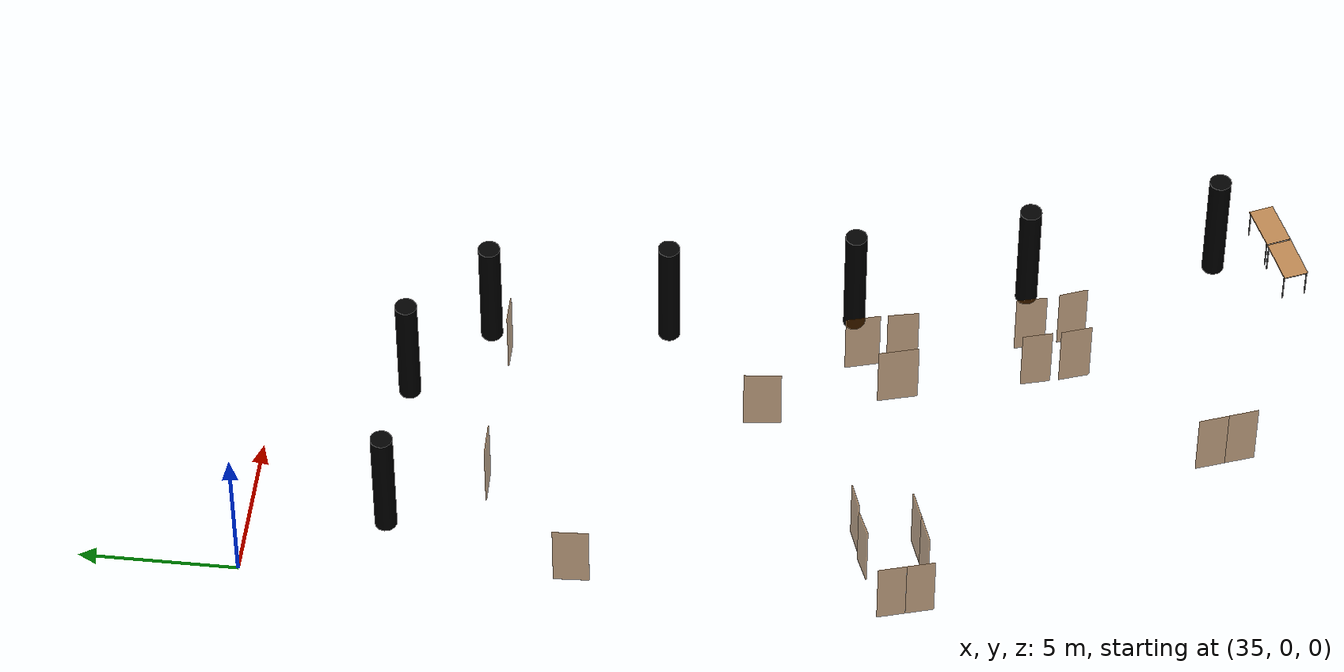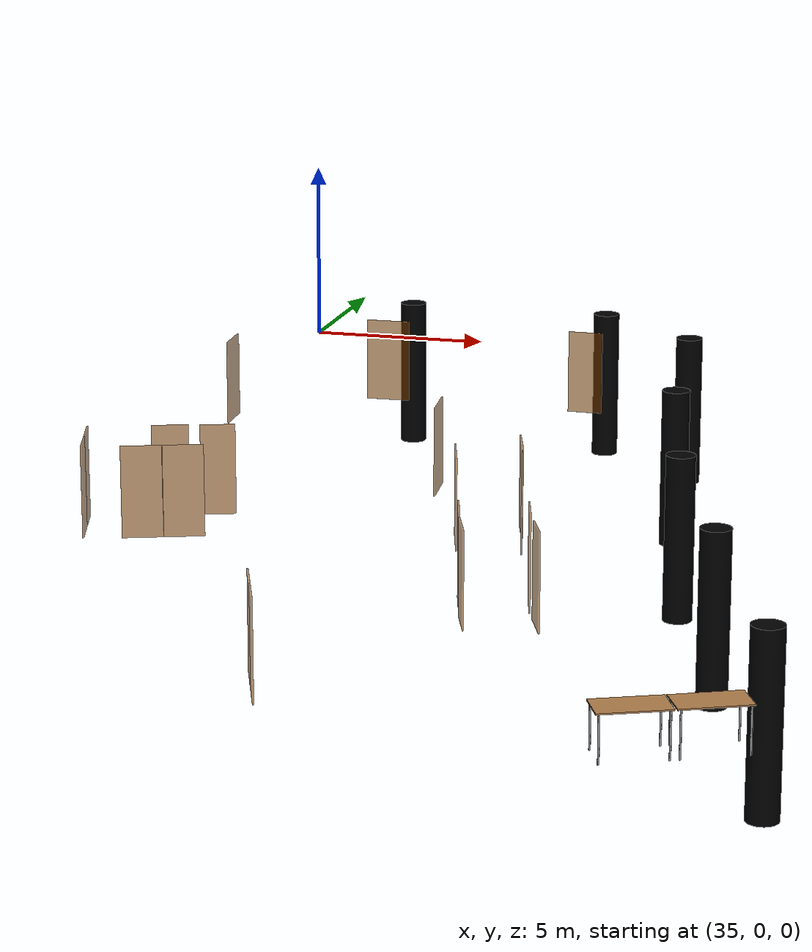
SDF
<sdf version="1.7">
 <world name="world">
  <model name="OpenRobotics/Table_4">
   <static>1</static>
   <link name="link">
    <collision name="surface">
     <pose>0 0 1 0 -0 0</pose>
     <geometry><box><size>1.5 0.8 0.03</size></box></geometry>
     <surface><friction><ode><mu>0.6</mu><mu2>0.6</mu2></ode></friction></surface>
    </collision>
    <visual name="visual1">
     <pose>0 0 1 0 -0 0</pose>
     <geometry><box><size>1.5 0.8 0.03</size></box></geometry>
     <material>
      <script><uri>file://media/materials/scripts/gazebo.material</uri><name>Gazebo/Wood</name></script>
     </material>
    </visual>
    <collision name="front_left_leg_c">
     <pose>0.68 0.38 0.5 0 -0 0</pose>
     <geometry><cylinder><radius>0.02</radius><length>1</length></cylinder></geometry>
    </collision>
    <visual name="front_left_leg">
     <pose>0.68 0.38 0.5 0 -0 0</pose>
     <geometry><cylinder><radius>0.02</radius><length>1</length></cylinder></geometry>
     <material>
      <script><uri>file://media/materials/scripts/gazebo.material</uri><name>Gazebo/Grey</name></script>
     </material>
    </visual>
    <collision name="front_right_leg_c">
     <pose>0.68 -0.38 0.5 0 -0 0</pose>
     <geometry><cylinder><radius>0.02</radius><length>1</length></cylinder></geometry>
    </collision>
    <visual name="front_right_leg">
     <pose>0.68 -0.38 0.5 0 -0 0</pose>
     <geometry><cylinder><radius>0.02</radius><length>1</length></cylinder></geometry>
     <material>
      <script><uri>file://media/materials/scripts/gazebo.material</uri><name>Gazebo/Grey</name></script>
     </material>
    </visual>
    <collision name="back_right_leg_c">
     <pose>-0.68 -0.38 0.5 0 -0 0</pose>
     <geometry><cylinder><radius>0.02</radius><length>1</length></cylinder></geometry>
    </collision>
    <visual name="back_right_leg">
     <pose>-0.68 -0.38 0.5 0 -0 0</pose>
     <geometry><cylinder><radius>0.02</radius><length>1</length></cylinder></geometry>
     <material>
      <script><uri>file://media/materials/scripts/gazebo.material</uri><name>Gazebo/Grey</name></script>
     </material>
    </visual>
    <collision name="back_left_leg_c">
     <pose>-0.68 0.38 0.5 0 -0 0</pose>
     <geometry><cylinder><radius>0.02</radius><length>1</length></cylinder></geometry>
    </collision>
    <visual name="back_left_leg">
     <pose>-0.68 0.38 0.5 0 -0 0</pose>
     <geometry><cylinder><radius>0.02</radius><length>1</length></cylinder></geometry>
     <material>
      <script><uri>file://media/materials/scripts/gazebo.material</uri><name>Gazebo/Grey</name></script>
     </material>
    </visual>
   </link>
   <pose>50.5168 -31.5278 0 0 -0 0.4167</pose>
  </model>
  <model name="OpenRobotics/Table_5">
   <static>1</static>
   <link name="link">
    <collision name="surface">
     <pose>0 0 1 0 -0 0</pose>
     <geometry><box><size>1.5 0.8 0.03</size></box></geometry>
     <surface><friction><ode><mu>0.6</mu><mu2>0.6</mu2></ode></friction></surface>
    </collision>
    <visual name="visual1">
     <pose>0 0 1 0 -0 0</pose>
     <geometry><box><size>1.5 0.8 0.03</size></box></geometry>
     <material>
      <script><uri>file://media/materials/scripts/gazebo.material</uri><name>Gazebo/Wood</name></script>
     </material>
    </visual>
    <collision name="front_left_leg_c">
     <pose>0.68 0.38 0.5 0 -0 0</pose>
     <geometry><cylinder><radius>0.02</radius><length>1</length></cylinder></geometry>
    </collision>
    <visual name="front_left_leg">
     <pose>0.68 0.38 0.5 0 -0 0</pose>
     <geometry><cylinder><radius>0.02</radius><length>1</length></cylinder></geometry>
     <material>
      <script><uri>file://media/materials/scripts/gazebo.material</uri><name>Gazebo/Grey</name></script>
     </material>
    </visual>
    <collision name="front_right_leg_c">
     <pose>0.68 -0.38 0.5 0 -0 0</pose>
     <geometry><cylinder><radius>0.02</radius><length>1</length></cylinder></geometry>
    </collision>
    <visual name="front_right_leg">
     <pose>0.68 -0.38 0.5 0 -0 0</pose>
     <geometry><cylinder><radius>0.02</radius><length>1</length></cylinder></geometry>
     <material>
      <script><uri>file://media/materials/scripts/gazebo.material</uri><name>Gazebo/Grey</name></script>
     </material>
    </visual>
    <collision name="back_right_leg_c">
     <pose>-0.68 -0.38 0.5 0 -0 0</pose>
     <geometry><cylinder><radius>0.02</radius><length>1</length></cylinder></geometry>
    </collision>
    <visual name="back_right_leg">
     <pose>-0.68 -0.38 0.5 0 -0 0</pose>
     <geometry><cylinder><radius>0.02</radius><length>1</length></cylinder></geometry>
     <material>
      <script><uri>file://media/materials/scripts/gazebo.material</uri><name>Gazebo/Grey</name></script>
     </material>
    </visual>
    <collision name="back_left_leg_c">
     <pose>-0.68 0.38 0.5 0 -0 0</pose>
     <geometry><cylinder><radius>0.02</radius><length>1</length></cylinder></geometry>
    </collision>
    <visual name="back_left_leg">
     <pose>-0.68 0.38 0.5 0 -0 0</pose>
     <geometry><cylinder><radius>0.02</radius><length>1</length></cylinder></geometry>
     <material>
      <script><uri>file://media/materials/scripts/gazebo.material</uri><name>Gazebo/Grey</name></script>
     </material>
    </visual>
   </link>
   <pose>51.9247 -30.8942 0 0 -0 0.4347</pose>
  </model>
  <model name="D12">
   <pose>47.2222 -24.83 0 0 -0 -1.20677</pose>
   <link name="right">
    <pose>0 0 1.11 0 -0 0</pose>
    <visual name="right_visual">
     <geometry><box><size>0.929981 0.03 2.2</size></box></geometry>
     <material><ambient>0.5 0.25 0 0.6</ambient><diffuse>0.5 0.25 0 0.6</diffuse></material>
    </visual>
    <collision name="right_collision">
     <geometry><box><size>0.929981 0.03 2.2</size></box></geometry>
     <surface><contact><collide_bitmask>2</collide_bitmask></contact></surface>
    </collision>
    <inertial>
     <mass>50</mass>
     <inertia><ixx>20.1704</ixx><iyy>23.7703</iyy><izz>3.60736</izz><ixy>0</ixy><ixz>0</ixz><iyz>0</iyz></inertia>
    </inertial>
   </link>
   <joint name="right_joint" type="revolute">
    <parent>world</parent>
    <child>right</child>
    <axis>
     <xyz>0 0 1</xyz>
     <limit><lower>0</lower><upper>1.57</upper></limit>
     <dynamics><spring_reference>0</spring_reference><spring_stiffness>0</spring_stiffness></dynamics>
    </axis>
    <pose>0.469991 0 0 0 -0 0</pose>
   </joint>
   <plugin name="door_D12" filename="libdoor.so">
    <v_max_door>0.5</v_max_door>
    <a_max_door>0.3</a_max_door>
    <a_nom_door>0.15</a_nom_door>
    <dx_min_door>0.01</dx_min_door>
    <f_max_door>500.0</f_max_door>
    <door name="D12" type="SwingDoor" left_joint_name="empty_joint" right_joint_name="right_joint"/>
   </plugin>
  </model>
  <model name="D13">
   <pose>46.7861 -23.541 -0 0 0 -1.31886</pose>
   <link name="right">
    <pose>0 0 1.11 0 -0 0</pose>
    <visual name="right_visual">
     <geometry><box><size>0.981892 0.03 2.2</size></box></geometry>
     <material><ambient>0.5 0.25 0 0.6</ambient><diffuse>0.5 0.25 0 0.6</diffuse></material>
    </visual>
    <collision name="right_collision">
     <geometry><box><size>0.981892 0.03 2.2</size></box></geometry>
     <surface><contact><collide_bitmask>2</collide_bitmask></contact></surface>
    </collision>
    <inertial>
     <mass>50</mass>
     <inertia><ixx>20.1704</ixx><iyy>24.1838</iyy><izz>4.02088</izz><ixy>0</ixy><ixz>0</ixz><iyz>0</iyz></inertia>
    </inertial>
   </link>
   <joint name="right_joint" type="revolute">
    <parent>world</parent>
    <child>right</child>
    <axis>
     <xyz>0 0 -1</xyz>
     <limit><lower>0</lower><upper>1.57</upper></limit>
     <dynamics><spring_reference>0</spring_reference><spring_stiffness>0</spring_stiffness></dynamics>
    </axis>
    <pose>0.495946 0 0 0 -0 0</pose>
   </joint>
   <plugin name="door_D13" filename="libdoor.so">
    <v_max_door>0.5</v_max_door>
    <a_max_door>0.3</a_max_door>
    <a_nom_door>0.15</a_nom_door>
    <dx_min_door>0.01</dx_min_door>
    <f_max_door>500.0</f_max_door>
    <door name="D13" type="SwingDoor" left_joint_name="empty_joint" right_joint_name="right_joint"/>
   </plugin>
  </model>
  <model name="D14">
   <pose>45.7058 -19.5679 0 0 0 -1.3544</pose>
   <link name="right">
    <pose>0 0 1.11 0 -0 0</pose>
    <visual name="right_visual">
     <geometry><box><size>0.986867 0.03 2.2</size></box></geometry>
     <material><ambient>0.5 0.25 0 0.6</ambient><diffuse>0.5 0.25 0 0.6</diffuse></material>
    </visual>
    <collision name="right_collision">
     <geometry><box><size>0.986867 0.03 2.2</size></box></geometry>
     <surface><contact><collide_bitmask>2</collide_bitmask></contact></surface>
    </collision>
    <inertial>
     <mass>50</mass>
     <inertia><ixx>20.1704</ixx><iyy>24.2246</iyy><izz>4.0617</izz><ixy>0</ixy><ixz>0</ixz><iyz>0</iyz></inertia>
    </inertial>
   </link>
   <joint name="right_joint" type="revolute">
    <parent>world</parent>
    <child>right</child>
    <axis>
     <xyz>0 0 1</xyz>
     <limit><lower>0</lower><upper>1.57</upper></limit>
     <dynamics><spring_reference>0</spring_reference><spring_stiffness>0</spring_stiffness></dynamics>
    </axis>
    <pose>0.498434 0 0 0 -0 0</pose>
   </joint>
   <plugin name="door_D14" filename="libdoor.so">
    <v_max_door>0.5</v_max_door>
    <a_max_door>0.3</a_max_door>
    <a_nom_door>0.15</a_nom_door>
    <dx_min_door>0.01</dx_min_door>
    <f_max_door>500.0</f_max_door>
    <door name="D14" type="SwingDoor" left_joint_name="empty_joint" right_joint_name="right_joint"/>
   </plugin>
  </model>
  <model name="D15">
   <pose>45.4079 -18.3231 0 0 -0 -1.29664</pose>
   <link name="right">
    <pose>0 0 1.11 0 -0 0</pose>
    <visual name="right_visual">
     <geometry><box><size>1.10514 0.03 2.2</size></box></geometry>
     <material><ambient>0.5 0.25 0 0.6</ambient><diffuse>0.5 0.25 0 0.6</diffuse></material>
    </visual>
    <collision name="right_collision">
     <geometry><box><size>1.10514 0.03 2.2</size></box></geometry>
     <surface><contact><collide_bitmask>2</collide_bitmask></contact></surface>
    </collision>
    <inertial>
     <mass>50</mass>
     <inertia><ixx>20.1704</ixx><iyy>25.2556</iyy><izz>5.09265</izz><ixy>0</ixy><ixz>0</ixz><iyz>0</iyz></inertia>
    </inertial>
   </link>
   <joint name="right_joint" type="revolute">
    <parent>world</parent>
    <child>right</child>
    <axis>
     <xyz>0 0 -1</xyz>
     <limit><lower>0</lower><upper>1.57</upper></limit>
     <dynamics><spring_reference>0</spring_reference><spring_stiffness>0</spring_stiffness></dynamics>
    </axis>
    <pose>0.55757 0 0 0 -0 0</pose>
   </joint>
   <plugin name="door_D15" filename="libdoor.so">
    <v_max_door>0.5</v_max_door>
    <a_max_door>0.3</a_max_door>
    <a_nom_door>0.15</a_nom_door>
    <dx_min_door>0.01</dx_min_door>
    <f_max_door>500.0</f_max_door>
    <door name="D15" type="SwingDoor" left_joint_name="empty_joint" right_joint_name="right_joint"/>
   </plugin>
  </model>
  <model name="D16">
   <pose>42.6679 -15.4188 0 -0 -0 -1.47952</pose>
   <link name="right">
    <pose>0 0 1.11 0 -0 0</pose>
    <visual name="right_visual">
     <geometry><box><size>1.1816 0.03 2.2</size></box></geometry>
     <material><ambient>0.5 0.25 0 0.6</ambient><diffuse>0.5 0.25 0 0.6</diffuse></material>
    </visual>
    <collision name="right_collision">
     <geometry><box><size>1.1816 0.03 2.2</size></box></geometry>
     <surface><contact><collide_bitmask>2</collide_bitmask></contact></surface>
    </collision>
    <inertial>
     <mass>50</mass>
     <inertia><ixx>20.1704</ixx><iyy>25.9841</iyy><izz>5.82114</izz><ixy>0</ixy><ixz>0</ixz><iyz>0</iyz></inertia>
    </inertial>
   </link>
   <joint name="right_joint" type="revolute">
    <parent>world</parent>
    <child>right</child>
    <axis>
     <xyz>0 0 1</xyz>
     <limit><lower>0</lower><upper>1.57</upper></limit>
     <dynamics><spring_reference>0</spring_reference><spring_stiffness>0</spring_stiffness></dynamics>
    </axis>
    <pose>0.595799 0 0 0 -0 0</pose>
   </joint>
   <plugin name="door_D16" filename="libdoor.so">
    <v_max_door>0.5</v_max_door>
    <a_max_door>0.3</a_max_door>
    <a_nom_door>0.15</a_nom_door>
    <dx_min_door>0.01</dx_min_door>
    <f_max_door>500.0</f_max_door>
    <door name="D16" type="SwingDoor" left_joint_name="empty_joint" right_joint_name="right_joint"/>
   </plugin>
  </model>
  <model name="D17">
   <pose>44.1506 -19.5573 -0 0 -0 1.84229</pose>
   <link name="right">
    <pose>0 0 1.11 0 -0 0</pose>
    <visual name="right_visual">
     <geometry><box><size>1.28448 0.03 2.2</size></box></geometry>
     <material><ambient>0.5 0.25 0 0.6</ambient><diffuse>0.5 0.25 0 0.6</diffuse></material>
    </visual>
    <collision name="right_collision">
     <geometry><box><size>1.28448 0.03 2.2</size></box></geometry>
     <surface><contact><collide_bitmask>2</collide_bitmask></contact></surface>
    </collision>
    <inertial>
     <mass>50</mass>
     <inertia><ixx>20.1704</ixx><iyy>27.0412</iyy><izz>6.87827</izz><ixy>0</ixy><ixz>0</ixz><iyz>0</iyz></inertia>
    </inertial>
   </link>
   <joint name="right_joint" type="revolute">
    <parent>world</parent>
    <child>right</child>
    <axis>
     <xyz>0 0 -1</xyz>
     <limit><lower>0</lower><upper>1.57</upper></limit>
     <dynamics><spring_reference>0</spring_reference><spring_stiffness>0</spring_stiffness></dynamics>
    </axis>
    <pose>0.647239 0 0 0 -0 0</pose>
   </joint>
   <plugin name="door_D17" filename="libdoor.so">
    <v_max_door>0.5</v_max_door>
    <a_max_door>0.3</a_max_door>
    <a_nom_door>0.15</a_nom_door>
    <dx_min_door>0.01</dx_min_door>
    <f_max_door>500.0</f_max_door>
    <door name="D17" type="SwingDoor" left_joint_name="empty_joint" right_joint_name="right_joint"/>
   </plugin>
  </model>
  <model name="D18">
   <pose>45.2939 -23.8308 0 0 -0 1.84233</pose>
   <link name="right">
    <pose>0 0 1.11 0 -0 0</pose>
    <visual name="right_visual">
     <geometry><box><size>0.954162 0.03 2.2</size></box></geometry>
     <material><ambient>0.5 0.25 0 0.6</ambient><diffuse>0.5 0.25 0 0.6</diffuse></material>
    </visual>
    <collision name="right_collision">
     <geometry><box><size>0.954162 0.03 2.2</size></box></geometry>
     <surface><contact><collide_bitmask>2</collide_bitmask></contact></surface>
    </collision>
    <inertial>
     <mass>50</mass>
     <inertia><ixx>20.1704</ixx><iyy>23.9601</iyy><izz>3.79719</izz><ixy>0</ixy><ixz>0</ixz><iyz>0</iyz></inertia>
    </inertial>
   </link>
   <joint name="right_joint" type="revolute">
    <parent>world</parent>
    <child>right</child>
    <axis>
     <xyz>0 0 1</xyz>
     <limit><lower>0</lower><upper>1.57</upper></limit>
     <dynamics><spring_reference>0</spring_reference><spring_stiffness>0</spring_stiffness></dynamics>
    </axis>
    <pose>0.482081 0 0 0 -0 0</pose>
   </joint>
   <plugin name="door_D18" filename="libdoor.so">
    <v_max_door>0.5</v_max_door>
    <a_max_door>0.3</a_max_door>
    <a_nom_door>0.15</a_nom_door>
    <dx_min_door>0.01</dx_min_door>
    <f_max_door>500.0</f_max_door>
    <door name="D18" type="SwingDoor" left_joint_name="empty_joint" right_joint_name="right_joint"/>
   </plugin>
  </model>
  <model name="D19">
   <pose>45.6474 -25.0325 0 0 -0 1.90388</pose>
   <link name="right">
    <pose>0 0 1.11 0 -0 0</pose>
    <visual name="right_visual">
     <geometry><box><size>0.992411 0.03 2.2</size></box></geometry>
     <material><ambient>0.5 0.25 0 0.6</ambient><diffuse>0.5 0.25 0 0.6</diffuse></material>
    </visual>
    <collision name="right_collision">
     <geometry><box><size>0.992411 0.03 2.2</size></box></geometry>
     <surface><contact><collide_bitmask>2</collide_bitmask></contact></surface>
    </collision>
    <inertial>
     <mass>50</mass>
     <inertia><ixx>20.1704</ixx><iyy>24.2703</iyy><izz>4.10741</izz><ixy>0</ixy><ixz>0</ixz><iyz>0</iyz></inertia>
    </inertial>
   </link>
   <joint name="right_joint" type="revolute">
    <parent>world</parent>
    <child>right</child>
    <axis>
     <xyz>0 0 -1</xyz>
     <limit><lower>0</lower><upper>1.57</upper></limit>
     <dynamics><spring_reference>0</spring_reference><spring_stiffness>0</spring_stiffness></dynamics>
    </axis>
    <pose>0.501205 0 0 0 -0 0</pose>
   </joint>
   <plugin name="door_D19" filename="libdoor.so">
    <v_max_door>0.5</v_max_door>
    <a_max_door>0.3</a_max_door>
    <a_nom_door>0.15</a_nom_door>
    <dx_min_door>0.01</dx_min_door>
    <f_max_door>500.0</f_max_door>
    <door name="D19" type="SwingDoor" left_joint_name="empty_joint" right_joint_name="right_joint"/>
   </plugin>
  </model>
  <model name="D28">
   <pose>35.6845 -10.236 0 0 -0 1.62689</pose>
   <link name="right">
    <pose>0 0 1.11 0 -0 0</pose>
    <visual name="right_visual">
     <geometry><box><size>1.11833 0.03 2.2</size></box></geometry>
     <material><ambient>0.5 0.25 0 0.6</ambient><diffuse>0.5 0.25 0 0.6</diffuse></material>
    </visual>
    <collision name="right_collision">
     <geometry><box><size>1.11833 0.03 2.2</size></box></geometry>
     <surface><contact><collide_bitmask>2</collide_bitmask></contact></surface>
    </collision>
    <inertial>
     <mass>50</mass>
     <inertia><ixx>20.1704</ixx><iyy>25.3777</iyy><izz>5.21482</izz><ixy>0</ixy><ixz>0</ixz><iyz>0</iyz></inertia>
    </inertial>
   </link>
   <joint name="right_joint" type="revolute">
    <parent>world</parent>
    <child>right</child>
    <axis>
     <xyz>0 0 1</xyz>
     <limit><lower>0</lower><upper>1.57</upper></limit>
     <dynamics><spring_reference>0</spring_reference><spring_stiffness>0</spring_stiffness></dynamics>
    </axis>
    <pose>0.564164 0 0 0 -0 0</pose>
   </joint>
   <plugin name="door_D28" filename="libdoor.so">
    <v_max_door>0.5</v_max_door>
    <a_max_door>0.3</a_max_door>
    <a_nom_door>0.15</a_nom_door>
    <dx_min_door>0.01</dx_min_door>
    <f_max_door>500.0</f_max_door>
    <door name="D28" type="SwingDoor" left_joint_name="empty_joint" right_joint_name="right_joint"/>
   </plugin>
  </model>
  <model name="D29">
   <pose>39.1322 -7.20514 0 0 -0 -3.11811</pose>
   <link name="right">
    <pose>0 0 1.11 0 -0 0</pose>
    <visual name="right_visual">
     <geometry><box><size>1.16347 0.03 2.2</size></box></geometry>
     <material><ambient>0.5 0.25 0 0.6</ambient><diffuse>0.5 0.25 0 0.6</diffuse></material>
    </visual>
    <collision name="right_collision">
     <geometry><box><size>1.16347 0.03 2.2</size></box></geometry>
     <surface><contact><collide_bitmask>2</collide_bitmask></contact></surface>
    </collision>
    <inertial>
     <mass>50</mass>
     <inertia><ixx>20.1704</ixx><iyy>25.8069</iyy><izz>5.64402</izz><ixy>0</ixy><ixz>0</ixz><iyz>0</iyz></inertia>
    </inertial>
   </link>
   <joint name="right_joint" type="revolute">
    <parent>world</parent>
    <child>right</child>
    <axis>
     <xyz>0 0 1</xyz>
     <limit><lower>0</lower><upper>1.57</upper></limit>
     <dynamics><spring_reference>0</spring_reference><spring_stiffness>0</spring_stiffness></dynamics>
    </axis>
    <pose>0.586735 0 0 0 -0 0</pose>
   </joint>
   <plugin name="door_D29" filename="libdoor.so">
    <v_max_door>0.5</v_max_door>
    <a_max_door>0.3</a_max_door>
    <a_nom_door>0.15</a_nom_door>
    <dx_min_door>0.01</dx_min_door>
    <f_max_door>500.0</f_max_door>
    <door name="D29" type="SwingDoor" left_joint_name="empty_joint" right_joint_name="right_joint"/>
   </plugin>
  </model>
  <model name="D30">
   <pose>44.6125 -7.19108 0 0 -0 3.14098</pose>
   <link name="right">
    <pose>0 0 1.11 0 -0 0</pose>
    <visual name="right_visual">
     <geometry><box><size>0.913281 0.03 2.2</size></box></geometry>
     <material><ambient>0.5 0.25 0 0.6</ambient><diffuse>0.5 0.25 0 0.6</diffuse></material>
    </visual>
    <collision name="right_collision">
     <geometry><box><size>0.913281 0.03 2.2</size></box></geometry>
     <surface><contact><collide_bitmask>2</collide_bitmask></contact></surface>
    </collision>
    <inertial>
     <mass>50</mass>
     <inertia><ixx>20.1704</ixx><iyy>23.642</iyy><izz>3.47909</izz><ixy>0</ixy><ixz>0</ixz><iyz>0</iyz></inertia>
    </inertial>
   </link>
   <joint name="right_joint" type="revolute">
    <parent>world</parent>
    <child>right</child>
    <axis>
     <xyz>0 0 1</xyz>
     <limit><lower>0</lower><upper>1.57</upper></limit>
     <dynamics><spring_reference>0</spring_reference><spring_stiffness>0</spring_stiffness></dynamics>
    </axis>
    <pose>0.461641 0 0 0 -0 0</pose>
   </joint>
   <plugin name="door_D30" filename="libdoor.so">
    <v_max_door>0.5</v_max_door>
    <a_max_door>0.3</a_max_door>
    <a_nom_door>0.15</a_nom_door>
    <dx_min_door>0.01</dx_min_door>
    <f_max_door>500.0</f_max_door>
    <door name="D30" type="SwingDoor" left_joint_name="empty_joint" right_joint_name="right_joint"/>
   </plugin>
  </model>
  <model name="D39">
   <pose>37.0629 -19.0735 0 -0 -0 -2.74755</pose>
   <link name="right">
    <pose>0 0 1.11 0 -0 0</pose>
    <visual name="right_visual">
     <geometry><box><size>0.87941 0.03 2.2</size></box></geometry>
     <material><ambient>0.5 0.25 0 0.6</ambient><diffuse>0.5 0.25 0 0.6</diffuse></material>
    </visual>
    <collision name="right_collision">
     <geometry><box><size>0.87941 0.03 2.2</size></box></geometry>
     <surface><contact><collide_bitmask>2</collide_bitmask></contact></surface>
    </collision>
    <inertial>
     <mass>50</mass>
     <inertia><ixx>20.1704</ixx><iyy>23.389</iyy><izz>3.22609</izz><ixy>0</ixy><ixz>0</ixz><iyz>0</iyz></inertia>
    </inertial>
   </link>
   <joint name="right_joint" type="revolute">
    <parent>world</parent>
    <child>right</child>
    <axis>
     <xyz>0 0 1</xyz>
     <limit><lower>0</lower><upper>1.57</upper></limit>
     <dynamics><spring_reference>0</spring_reference><spring_stiffness>0</spring_stiffness></dynamics>
    </axis>
    <pose>0.444705 0 0 0 -0 0</pose>
   </joint>
   <plugin name="door_D39" filename="libdoor.so">
    <v_max_door>0.5</v_max_door>
    <a_max_door>0.3</a_max_door>
    <a_nom_door>0.15</a_nom_door>
    <dx_min_door>0.01</dx_min_door>
    <f_max_door>500.0</f_max_door>
    <door name="D39" type="SwingDoor" left_joint_name="empty_joint" right_joint_name="right_joint"/>
   </plugin>
  </model>
  <model name="D40">
   <pose>38.135 -18.7389 0 0 -0 0.340493</pose>
   <link name="right">
    <pose>0 0 1.11 0 -0 0</pose>
    <visual name="right_visual">
     <geometry><box><size>0.833605 0.03 2.2</size></box></geometry>
     <material><ambient>0.5 0.25 0 0.6</ambient><diffuse>0.5 0.25 0 0.6</diffuse></material>
    </visual>
    <collision name="right_collision">
     <geometry><box><size>0.833605 0.03 2.2</size></box></geometry>
     <surface><contact><collide_bitmask>2</collide_bitmask></contact></surface>
    </collision>
    <inertial>
     <mass>50</mass>
     <inertia><ixx>20.1704</ixx><iyy>23.0621</iyy><izz>2.89915</izz><ixy>0</ixy><ixz>0</ixz><iyz>0</iyz></inertia>
    </inertial>
   </link>
   <joint name="right_joint" type="revolute">
    <parent>world</parent>
    <child>right</child>
    <axis>
     <xyz>0 0 1</xyz>
     <limit><lower>0</lower><upper>1.57</upper></limit>
     <dynamics><spring_reference>0</spring_reference><spring_stiffness>0</spring_stiffness></dynamics>
    </axis>
    <pose>0.421802 0 0 0 -0 0</pose>
   </joint>
   <plugin name="door_D40" filename="libdoor.so">
    <v_max_door>0.5</v_max_door>
    <a_max_door>0.3</a_max_door>
    <a_nom_door>0.15</a_nom_door>
    <dx_min_door>0.01</dx_min_door>
    <f_max_door>500.0</f_max_door>
    <door name="D40" type="SwingDoor" left_joint_name="empty_joint" right_joint_name="right_joint"/>
   </plugin>
  </model>
  <model name="DH3">
   <pose>42.5963 -29.9587 0 0 0 -1.21422</pose>
   <link name="right">
    <pose>0.481649 0 1.11 0 -0 0</pose>
    <visual name="right_visual">
     <geometry><box><size>0.953298 0.03 2.2</size></box></geometry>
     <material><ambient>0.5 0.25 0 0.6</ambient><diffuse>0.5 0.25 0 0.6</diffuse></material>
    </visual>
    <collision name="right_collision">
     <geometry><box><size>0.953298 0.03 2.2</size></box></geometry>
     <surface><contact><collide_bitmask>2</collide_bitmask></contact></surface>
    </collision>
    <inertial>
     <mass>50</mass>
     <inertia><ixx>20.1704</ixx><iyy>23.9532</iyy><izz>3.79032</izz><ixy>0</ixy><ixz>0</ixz><iyz>0</iyz></inertia>
    </inertial>
   </link>
   <joint name="right_joint" type="revolute">
    <parent>world</parent>
    <child>right</child>
    <axis>
     <xyz>0 0 -1</xyz>
     <limit><lower>0</lower><upper>1.57</upper></limit>
     <dynamics><spring_reference>0</spring_reference><spring_stiffness>0</spring_stiffness></dynamics>
    </axis>
    <pose>0.481649 0 0 0 -0 0</pose>
   </joint>
   <link name="left">
    <pose>-0.481649 0 1.11 0 -0 0</pose>
    <visual name="left_visual">
     <geometry><box><size>0.953298 0.03 2.2</size></box></geometry>
     <material><ambient>0.5 0.25 0 0.6</ambient><diffuse>0.5 0.25 0 0.6</diffuse></material>
    </visual>
    <collision name="left_collision">
     <geometry><box><size>0.953298 0.03 2.2</size></box></geometry>
     <surface><contact><collide_bitmask>2</collide_bitmask></contact></surface>
    </collision>
    <inertial>
     <mass>50</mass>
     <inertia><ixx>20.1704</ixx><iyy>23.9532</iyy><izz>3.79032</izz><ixy>0</ixy><ixz>0</ixz><iyz>0</iyz></inertia>
    </inertial>
   </link>
   <joint name="left_joint" type="revolute">
    <parent>world</parent>
    <child>left</child>
    <axis>
     <xyz>0 0 -1</xyz>
     <limit><lower>-1.57</lower><upper>0</upper></limit>
     <dynamics><spring_reference>0</spring_reference><spring_stiffness>0</spring_stiffness></dynamics>
    </axis>
    <pose>-0.481649 0 0 0 -0 0</pose>
   </joint>
   <plugin name="door_DH3" filename="libdoor.so">
    <v_max_door>0.5</v_max_door>
    <a_max_door>0.3</a_max_door>
    <a_nom_door>0.15</a_nom_door>
    <dx_min_door>0.01</dx_min_door>
    <f_max_door>500.0</f_max_door>
    <door name="DH3" type="DoubleSwingDoor" left_joint_name="left_joint" right_joint_name="right_joint"/>
   </plugin>
  </model>
  <model name="DH5">
   <pose>35.4783 -20.5462 0 0 -0 1.854</pose>
   <link name="right">
    <pose>0.44729 0 1.11 0 -0 0</pose>
    <visual name="right_visual">
     <geometry><box><size>0.884581 0.03 2.2</size></box></geometry>
     <material><ambient>0.5 0.25 0 0.6</ambient><diffuse>0.5 0.25 0 0.6</diffuse></material>
    </visual>
    <collision name="right_collision">
     <geometry><box><size>0.884581 0.03 2.2</size></box></geometry>
     <surface><contact><collide_bitmask>2</collide_bitmask></contact></surface>
    </collision>
    <inertial>
     <mass>50</mass>
     <inertia><ixx>20.1704</ixx><iyy>23.427</iyy><izz>3.2641</izz><ixy>0</ixy><ixz>0</ixz><iyz>0</iyz></inertia>
    </inertial>
   </link>
   <joint name="right_joint" type="revolute">
    <parent>world</parent>
    <child>right</child>
    <axis>
     <xyz>0 0 -1</xyz>
     <limit><lower>0</lower><upper>1.57</upper></limit>
     <dynamics><spring_reference>0</spring_reference><spring_stiffness>0</spring_stiffness></dynamics>
    </axis>
    <pose>0.44729 0 0 0 -0 0</pose>
   </joint>
   <link name="left">
    <pose>-0.44729 0 1.11 0 -0 0</pose>
    <visual name="left_visual">
     <geometry><box><size>0.884581 0.03 2.2</size></box></geometry>
     <material><ambient>0.5 0.25 0 0.6</ambient><diffuse>0.5 0.25 0 0.6</diffuse></material>
    </visual>
    <collision name="left_collision">
     <geometry><box><size>0.884581 0.03 2.2</size></box></geometry>
     <surface><contact><collide_bitmask>2</collide_bitmask></contact></surface>
    </collision>
    <inertial>
     <mass>50</mass>
     <inertia><ixx>20.1704</ixx><iyy>23.427</iyy><izz>3.2641</izz><ixy>0</ixy><ixz>0</ixz><iyz>0</iyz></inertia>
    </inertial>
   </link>
   <joint name="left_joint" type="revolute">
    <parent>world</parent>
    <child>left</child>
    <axis>
     <xyz>0 0 -1</xyz>
     <limit><lower>-1.57</lower><upper>0</upper></limit>
     <dynamics><spring_reference>0</spring_reference><spring_stiffness>0</spring_stiffness></dynamics>
    </axis>
    <pose>-0.44729 0 0 0 -0 0</pose>
   </joint>
   <plugin name="door_DH5" filename="libdoor.so">
    <v_max_door>0.5</v_max_door>
    <a_max_door>0.3</a_max_door>
    <a_nom_door>0.15</a_nom_door>
    <dx_min_door>0.01</dx_min_door>
    <f_max_door>500.0</f_max_door>
    <door name="DH5" type="DoubleSwingDoor" left_joint_name="left_joint" right_joint_name="right_joint"/>
   </plugin>
  </model>
  <model name="DH6">
   <pose>37.4887 -20.8187 -0 0 -0 0.345673</pose>
   <link name="right">
    <pose>0.48223 0 1.11 0 -0 0</pose>
    <visual name="right_visual">
     <geometry><box><size>0.954459 0.03 2.2</size></box></geometry>
     <material><ambient>0.5 0.25 0 0.6</ambient><diffuse>0.5 0.25 0 0.6</diffuse></material>
    </visual>
    <collision name="right_collision">
     <geometry><box><size>0.954459 0.03 2.2</size></box></geometry>
     <surface><contact><collide_bitmask>2</collide_bitmask></contact></surface>
    </collision>
    <inertial>
     <mass>50</mass>
     <inertia><ixx>20.1704</ixx><iyy>23.9625</iyy><izz>3.79955</izz><ixy>0</ixy><ixz>0</ixz><iyz>0</iyz></inertia>
    </inertial>
   </link>
   <joint name="right_joint" type="revolute">
    <parent>world</parent>
    <child>right</child>
    <axis>
     <xyz>0 0 -1</xyz>
     <limit><lower>0</lower><upper>1.57</upper></limit>
     <dynamics><spring_reference>0</spring_reference><spring_stiffness>0</spring_stiffness></dynamics>
    </axis>
    <pose>0.48223 0 0 0 -0 0</pose>
   </joint>
   <link name="left">
    <pose>-0.48223 0 1.11 0 -0 0</pose>
    <visual name="left_visual">
     <geometry><box><size>0.954459 0.03 2.2</size></box></geometry>
     <material><ambient>0.5 0.25 0 0.6</ambient><diffuse>0.5 0.25 0 0.6</diffuse></material>
    </visual>
    <collision name="left_collision">
     <geometry><box><size>0.954459 0.03 2.2</size></box></geometry>
     <surface><contact><collide_bitmask>2</collide_bitmask></contact></surface>
    </collision>
    <inertial>
     <mass>50</mass>
     <inertia><ixx>20.1704</ixx><iyy>23.9625</iyy><izz>3.79955</izz><ixy>0</ixy><ixz>0</ixz><iyz>0</iyz></inertia>
    </inertial>
   </link>
   <joint name="left_joint" type="revolute">
    <parent>world</parent>
    <child>left</child>
    <axis>
     <xyz>0 0 -1</xyz>
     <limit><lower>-1.57</lower><upper>0</upper></limit>
     <dynamics><spring_reference>0</spring_reference><spring_stiffness>0</spring_stiffness></dynamics>
    </axis>
    <pose>-0.48223 0 0 0 -0 0</pose>
   </joint>
   <plugin name="door_DH6" filename="libdoor.so">
    <v_max_door>0.5</v_max_door>
    <a_max_door>0.3</a_max_door>
    <a_nom_door>0.15</a_nom_door>
    <dx_min_door>0.01</dx_min_door>
    <f_max_door>500.0</f_max_door>
    <door name="DH6" type="DoubleSwingDoor" left_joint_name="left_joint" right_joint_name="right_joint"/>
   </plugin>
  </model>
  <model name="CylinderBlock_17">
   <link name="link">
    <inertial>
     <mass>1</mass>
     <inertia><ixx>1</ixx><ixy>0</ixy><ixz>0</ixz><iyy>1</iyy><iyz>0</iyz><izz>1</izz></inertia>
    </inertial>
    <visual name="visual">
     <geometry><cylinder><radius>0.35</radius><length>4.0</length></cylinder></geometry>
     <material>
      <shader type="pixel"><normal_map>__default__</normal_map></shader>
      <script><name>ModelPreview_1::link::visual_MATERIAL_</name><uri>__default__</uri></script>
      <ambient>0 0 0 1</ambient>
      <diffuse>0 0 0 1</diffuse>
      <specular>0 0 0 1</specular>
      <emissive>0 0 0 1</emissive>
     </material>
    </visual>
    <collision name="collision">
     <geometry><cylinder><radius>0.35</radius><length>4.0</length></cylinder></geometry>
     <surface>
      <friction>
       <ode><mu>1</mu><mu2>1</mu2><fdir1>0 0 0</fdir1><slip1>0</slip1><slip2>0</slip2></ode>
       <torsional>
        <coefficient>1</coefficient>
        <patch_radius>0</patch_radius>
        <surface_radius>0</surface_radius>
        <use_patch_radius>1</use_patch_radius>
        <ode><slip>0</slip></ode>
       </torsional>
      </friction>
      <bounce><restitution_coefficient>0</restitution_coefficient><threshold>1e+06</threshold></bounce>
      <contact>
       <collide_without_contact>0</collide_without_contact>
       <collide_without_contact_bitmask>1</collide_without_contact_bitmask>
       <collide_bitmask>1</collide_bitmask>
       <ode>
        <soft_cfm>0</soft_cfm>
        <soft_erp>0.2</soft_erp>
        <kp>1e+13</kp>
        <kd>1</kd>
        <max_vel>0.01</max_vel>
        <min_depth>0</min_depth>
       </ode>
       <bullet>
        <split_impulse>1</split_impulse>
        <split_impulse_penetration_threshold>-0.01</split_impulse_penetration_threshold>
        <soft_cfm>0</soft_cfm>
        <soft_erp>0.2</soft_erp>
        <kp>1e+13</kp>
        <kd>1</kd>
       </bullet>
      </contact>
     </surface>
    </collision>
   </link>
   <static>1</static>
   <pose>52.7183 -29.2045 0 0 -0 0</pose>
  </model>
  <model name="CylinderBlock_18">
   <link name="link">
    <inertial>
     <mass>1</mass>
     <inertia><ixx>1</ixx><ixy>0</ixy><ixz>0</ixz><iyy>1</iyy><iyz>0</iyz><izz>1</izz></inertia>
    </inertial>
    <visual name="visual">
     <geometry><cylinder><radius>0.35</radius><length>4.0</length></cylinder></geometry>
     <material>
      <shader type="pixel"><normal_map>__default__</normal_map></shader>
      <script><name>ModelPreview_1::link::visual_MATERIAL_</name><uri>__default__</uri></script>
      <ambient>0 0 0 1</ambient>
      <diffuse>0 0 0 1</diffuse>
      <specular>0 0 0 1</specular>
      <emissive>0 0 0 1</emissive>
     </material>
    </visual>
    <collision name="collision">
     <geometry><cylinder><radius>0.35</radius><length>4.0</length></cylinder></geometry>
     <surface>
      <friction>
       <ode><mu>1</mu><mu2>1</mu2><fdir1>0 0 0</fdir1><slip1>0</slip1><slip2>0</slip2></ode>
       <torsional>
        <coefficient>1</coefficient>
        <patch_radius>0</patch_radius>
        <surface_radius>0</surface_radius>
        <use_patch_radius>1</use_patch_radius>
        <ode><slip>0</slip></ode>
       </torsional>
      </friction>
      <bounce><restitution_coefficient>0</restitution_coefficient><threshold>1e+06</threshold></bounce>
      <contact>
       <collide_without_contact>0</collide_without_contact>
       <collide_without_contact_bitmask>1</collide_without_contact_bitmask>
       <collide_bitmask>1</collide_bitmask>
       <ode>
        <soft_cfm>0</soft_cfm>
        <soft_erp>0.2</soft_erp>
        <kp>1e+13</kp>
        <kd>1</kd>
        <max_vel>0.01</max_vel>
        <min_depth>0</min_depth>
       </ode>
       <bullet>
        <split_impulse>1</split_impulse>
        <split_impulse_penetration_threshold>-0.01</split_impulse_penetration_threshold>
        <soft_cfm>0</soft_cfm>
        <soft_erp>0.2</soft_erp>
        <kp>1e+13</kp>
        <kd>1</kd>
       </bullet>
      </contact>
     </surface>
    </collision>
   </link>
   <static>1</static>
   <pose>50.7467 -23.242 0 0 -0 0</pose>
  </model>
  <model name="CylinderBlock_19">
   <link name="link">
    <inertial>
     <mass>1</mass>
     <inertia><ixx>1</ixx><ixy>0</ixy><ixz>0</ixz><iyy>1</iyy><iyz>0</iyz><izz>1</izz></inertia>
    </inertial>
    <visual name="visual">
     <geometry><cylinder><radius>0.35</radius><length>4.0</length></cylinder></geometry>
     <material>
      <shader type="pixel"><normal_map>__default__</normal_map></shader>
      <script><name>ModelPreview_1::link::visual_MATERIAL_</name><uri>__default__</uri></script>
      <ambient>0 0 0 1</ambient>
      <diffuse>0 0 0 1</diffuse>
      <specular>0 0 0 1</specular>
      <emissive>0 0 0 1</emissive>
     </material>
    </visual>
    <collision name="collision">
     <geometry><cylinder><radius>0.35</radius><length>4.0</length></cylinder></geometry>
     <surface>
      <friction>
       <ode><mu>1</mu><mu2>1</mu2><fdir1>0 0 0</fdir1><slip1>0</slip1><slip2>0</slip2></ode>
       <torsional>
        <coefficient>1</coefficient>
        <patch_radius>0</patch_radius>
        <surface_radius>0</surface_radius>
        <use_patch_radius>1</use_patch_radius>
        <ode><slip>0</slip></ode>
       </torsional>
      </friction>
      <bounce><restitution_coefficient>0</restitution_coefficient><threshold>1e+06</threshold></bounce>
      <contact>
       <collide_without_contact>0</collide_without_contact>
       <collide_without_contact_bitmask>1</collide_without_contact_bitmask>
       <collide_bitmask>1</collide_bitmask>
       <ode>
        <soft_cfm>0</soft_cfm>
        <soft_erp>0.2</soft_erp>
        <kp>1e+13</kp>
        <kd>1</kd>
        <max_vel>0.01</max_vel>
        <min_depth>0</min_depth>
       </ode>
       <bullet>
        <split_impulse>1</split_impulse>
        <split_impulse_penetration_threshold>-0.01</split_impulse_penetration_threshold>
        <soft_cfm>0</soft_cfm>
        <soft_erp>0.2</soft_erp>
        <kp>1e+13</kp>
        <kd>1</kd>
       </bullet>
      </contact>
     </surface>
    </collision>
   </link>
   <static>1</static>
   <pose>49.0441 -17.7848 0 0 -0 0</pose>
  </model>
  <model name="CylinderBlock_20">
   <link name="link">
    <inertial>
     <mass>1</mass>
     <inertia><ixx>1</ixx><ixy>0</ixy><ixz>0</ixz><iyy>1</iyy><iyz>0</iyz><izz>1</izz></inertia>
    </inertial>
    <visual name="visual">
     <geometry><cylinder><radius>0.35</radius><length>4.0</length></cylinder></geometry>
     <material>
      <shader type="pixel"><normal_map>__default__</normal_map></shader>
      <script><name>ModelPreview_1::link::visual_MATERIAL_</name><uri>__default__</uri></script>
      <ambient>0 0 0 1</ambient>
      <diffuse>0 0 0 1</diffuse>
      <specular>0 0 0 1</specular>
      <emissive>0 0 0 1</emissive>
     </material>
    </visual>
    <collision name="collision">
     <geometry><cylinder><radius>0.35</radius><length>4.0</length></cylinder></geometry>
     <surface>
      <friction>
       <ode><mu>1</mu><mu2>1</mu2><fdir1>0 0 0</fdir1><slip1>0</slip1><slip2>0</slip2></ode>
       <torsional>
        <coefficient>1</coefficient>
        <patch_radius>0</patch_radius>
        <surface_radius>0</surface_radius>
        <use_patch_radius>1</use_patch_radius>
        <ode><slip>0</slip></ode>
       </torsional>
      </friction>
      <bounce><restitution_coefficient>0</restitution_coefficient><threshold>1e+06</threshold></bounce>
      <contact>
       <collide_without_contact>0</collide_without_contact>
       <collide_without_contact_bitmask>1</collide_without_contact_bitmask>
       <collide_bitmask>1</collide_bitmask>
       <ode>
        <soft_cfm>0</soft_cfm>
        <soft_erp>0.2</soft_erp>
        <kp>1e+13</kp>
        <kd>1</kd>
        <max_vel>0.01</max_vel>
        <min_depth>0</min_depth>
       </ode>
       <bullet>
        <split_impulse>1</split_impulse>
        <split_impulse_penetration_threshold>-0.01</split_impulse_penetration_threshold>
        <soft_cfm>0</soft_cfm>
        <soft_erp>0.2</soft_erp>
        <kp>1e+13</kp>
        <kd>1</kd>
       </bullet>
      </contact>
     </surface>
    </collision>
   </link>
   <static>1</static>
   <pose>47.8958 -11.8921 0 0 -0 0</pose>
  </model>
  <model name="CylinderBlock_21">
   <link name="link">
    <inertial>
     <mass>1</mass>
     <inertia><ixx>1</ixx><ixy>0</ixy><ixz>0</ixz><iyy>1</iyy><iyz>0</iyz><izz>1</izz></inertia>
    </inertial>
    <visual name="visual">
     <geometry><cylinder><radius>0.35</radius><length>4.0</length></cylinder></geometry>
     <material>
      <shader type="pixel"><normal_map>__default__</normal_map></shader>
      <script><name>ModelPreview_1::link::visual_MATERIAL_</name><uri>__default__</uri></script>
      <ambient>0 0 0 1</ambient>
      <diffuse>0 0 0 1</diffuse>
      <specular>0 0 0 1</specular>
      <emissive>0 0 0 1</emissive>
     </material>
    </visual>
    <collision name="collision">
     <geometry><cylinder><radius>0.35</radius><length>4.0</length></cylinder></geometry>
     <surface>
      <friction>
       <ode><mu>1</mu><mu2>1</mu2><fdir1>0 0 0</fdir1><slip1>0</slip1><slip2>0</slip2></ode>
       <torsional>
        <coefficient>1</coefficient>
        <patch_radius>0</patch_radius>
        <surface_radius>0</surface_radius>
        <use_patch_radius>1</use_patch_radius>
        <ode><slip>0</slip></ode>
       </torsional>
      </friction>
      <bounce><restitution_coefficient>0</restitution_coefficient><threshold>1e+06</threshold></bounce>
      <contact>
       <collide_without_contact>0</collide_without_contact>
       <collide_without_contact_bitmask>1</collide_without_contact_bitmask>
       <collide_bitmask>1</collide_bitmask>
       <ode>
        <soft_cfm>0</soft_cfm>
        <soft_erp>0.2</soft_erp>
        <kp>1e+13</kp>
        <kd>1</kd>
        <max_vel>0.01</max_vel>
        <min_depth>0</min_depth>
       </ode>
       <bullet>
        <split_impulse>1</split_impulse>
        <split_impulse_penetration_threshold>-0.01</split_impulse_penetration_threshold>
        <soft_cfm>0</soft_cfm>
        <soft_erp>0.2</soft_erp>
        <kp>1e+13</kp>
        <kd>1</kd>
       </bullet>
      </contact>
     </surface>
    </collision>
   </link>
   <static>1</static>
   <pose>47.2535 -6.19794 0 0 -0 0</pose>
  </model>
  <model name="CylinderBlock_22">
   <link name="link">
    <inertial>
     <mass>1</mass>
     <inertia><ixx>1</ixx><ixy>0</ixy><ixz>0</ixz><iyy>1</iyy><iyz>0</iyz><izz>1</izz></inertia>
    </inertial>
    <visual name="visual">
     <geometry><cylinder><radius>0.35</radius><length>4.0</length></cylinder></geometry>
     <material>
      <shader type="pixel"><normal_map>__default__</normal_map></shader>
      <script><name>ModelPreview_1::link::visual_MATERIAL_</name><uri>__default__</uri></script>
      <ambient>0 0 0 1</ambient>
      <diffuse>0 0 0 1</diffuse>
      <specular>0 0 0 1</specular>
      <emissive>0 0 0 1</emissive>
     </material>
    </visual>
    <collision name="collision">
     <geometry><cylinder><radius>0.35</radius><length>4.0</length></cylinder></geometry>
     <surface>
      <friction>
       <ode><mu>1</mu><mu2>1</mu2><fdir1>0 0 0</fdir1><slip1>0</slip1><slip2>0</slip2></ode>
       <torsional>
        <coefficient>1</coefficient>
        <patch_radius>0</patch_radius>
        <surface_radius>0</surface_radius>
        <use_patch_radius>1</use_patch_radius>
        <ode><slip>0</slip></ode>
       </torsional>
      </friction>
      <bounce><restitution_coefficient>0</restitution_coefficient><threshold>1e+06</threshold></bounce>
      <contact>
       <collide_without_contact>0</collide_without_contact>
       <collide_without_contact_bitmask>1</collide_without_contact_bitmask>
       <collide_bitmask>1</collide_bitmask>
       <ode>
        <soft_cfm>0</soft_cfm>
        <soft_erp>0.2</soft_erp>
        <kp>1e+13</kp>
        <kd>1</kd>
        <max_vel>0.01</max_vel>
        <min_depth>0</min_depth>
       </ode>
       <bullet>
        <split_impulse>1</split_impulse>
        <split_impulse_penetration_threshold>-0.01</split_impulse_penetration_threshold>
        <soft_cfm>0</soft_cfm>
        <soft_erp>0.2</soft_erp>
        <kp>1e+13</kp>
        <kd>1</kd>
       </bullet>
      </contact>
     </surface>
    </collision>
   </link>
   <static>1</static>
   <pose>44.5299 -3.90872 0 0 -0 0</pose>
  </model>
  <model name="CylinderBlock_23">
   <link name="link">
    <inertial>
     <mass>1</mass>
     <inertia><ixx>1</ixx><ixy>0</ixy><ixz>0</ixz><iyy>1</iyy><iyz>0</iyz><izz>1</izz></inertia>
    </inertial>
    <visual name="visual">
     <geometry><cylinder><radius>0.35</radius><length>4.0</length></cylinder></geometry>
     <material>
      <shader type="pixel"><normal_map>__default__</normal_map></shader>
      <script><name>ModelPreview_1::link::visual_MATERIAL_</name><uri>__default__</uri></script>
      <ambient>0 0 0 1</ambient>
      <diffuse>0 0 0 1</diffuse>
      <specular>0 0 0 1</specular>
      <emissive>0 0 0 1</emissive>
     </material>
    </visual>
    <collision name="collision">
     <geometry><cylinder><radius>0.35</radius><length>4.0</length></cylinder></geometry>
     <surface>
      <friction>
       <ode><mu>1</mu><mu2>1</mu2><fdir1>0 0 0</fdir1><slip1>0</slip1><slip2>0</slip2></ode>
       <torsional>
        <coefficient>1</coefficient>
        <patch_radius>0</patch_radius>
        <surface_radius>0</surface_radius>
        <use_patch_radius>1</use_patch_radius>
        <ode><slip>0</slip></ode>
       </torsional>
      </friction>
      <bounce><restitution_coefficient>0</restitution_coefficient><threshold>1e+06</threshold></bounce>
      <contact>
       <collide_without_contact>0</collide_without_contact>
       <collide_without_contact_bitmask>1</collide_without_contact_bitmask>
       <collide_bitmask>1</collide_bitmask>
       <ode>
        <soft_cfm>0</soft_cfm>
        <soft_erp>0.2</soft_erp>
        <kp>1e+13</kp>
        <kd>1</kd>
        <max_vel>0.01</max_vel>
        <min_depth>0</min_depth>
       </ode>
       <bullet>
        <split_impulse>1</split_impulse>
        <split_impulse_penetration_threshold>-0.01</split_impulse_penetration_threshold>
        <soft_cfm>0</soft_cfm>
        <soft_erp>0.2</soft_erp>
        <kp>1e+13</kp>
        <kd>1</kd>
       </bullet>
      </contact>
     </surface>
    </collision>
   </link>
   <static>1</static>
   <pose>38.9757 -3.93247 0 0 -0 0</pose>
  </model>
 </world>
</sdf>
